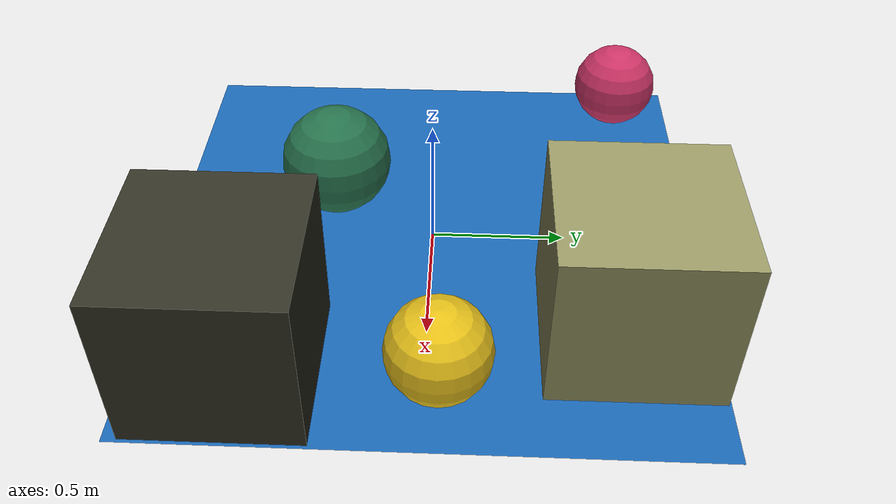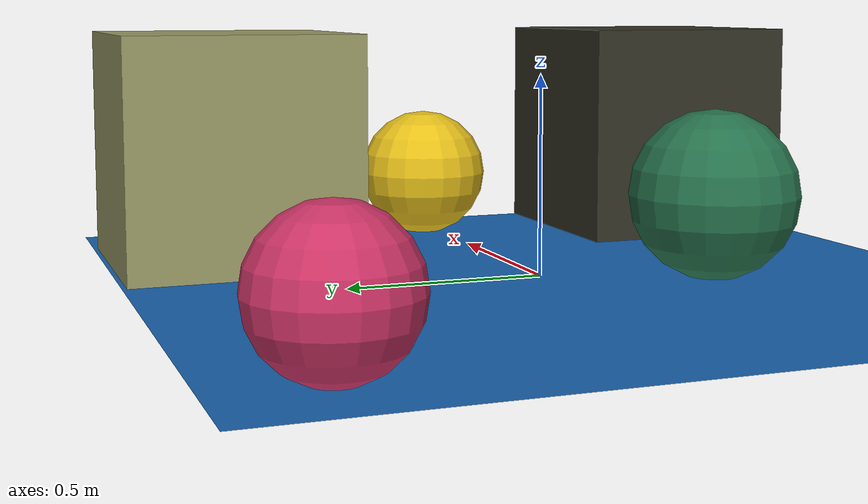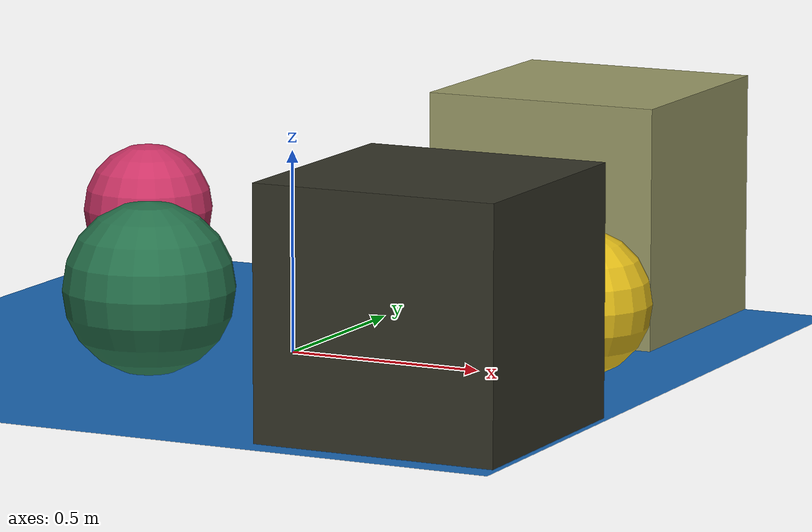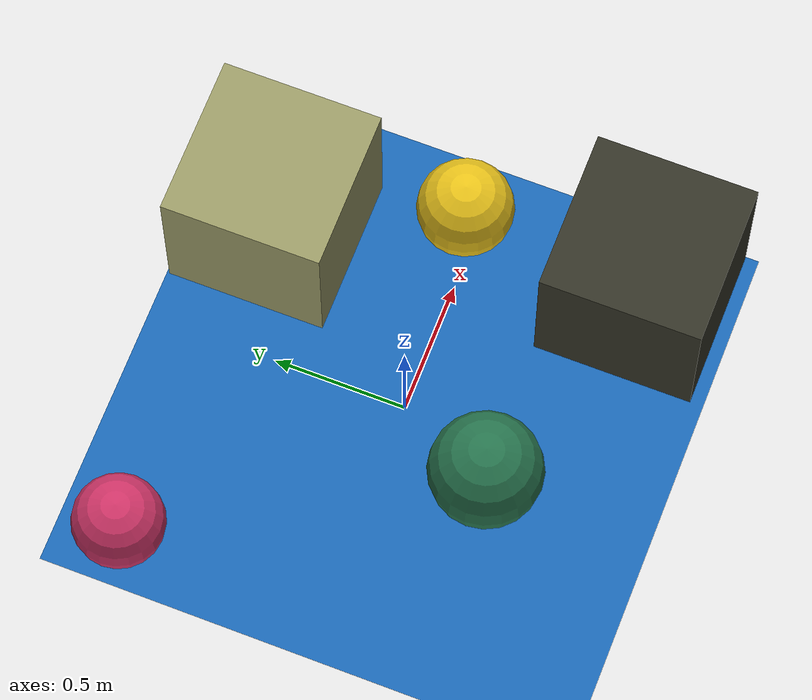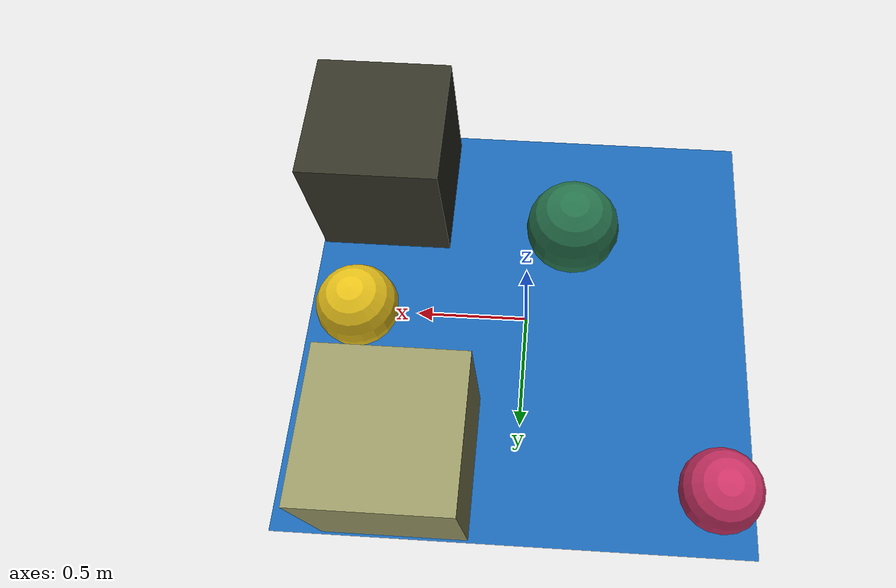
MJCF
<mujoco>
   <asset>
<texture type="skybox" builtin="gradient" rgb1="0.4 0.4 0.5" rgb2="0.7 0.1 0.5" width="256" height="256"/>
<texture name="flat_0" builtin="flat" rgb1="0.8 0.2 0.4" rgb2="0.8 0.2 0.4"  width="200" height="200"/>
<texture name="checker_1" builtin="checker" type="2d" rgb1="0.2 0.6 0.5" rgb2="0.1 0.3 0.1" width="200" height="200"/>
<texture name="checker_2" builtin="checker" type="2d" rgb1="0.4 0.4 0.2" rgb2="0.8 0.8 0.6" width="200" height="200"/>
<texture name="gradient_3" builtin="gradient" rgb1="1.0 1.0 0.0" rgb2="0.8 0.5 0.2" width="200" height="200"/>
<texture name="gradient_4" builtin="gradient" rgb1="0.0 0.4 0.2" rgb2="0.4 0.0 0.1" width="200" height="200"/><material name="flat_0_mat" reflectance="0" texture="flat_0" texuniform="true"/>
<material name="checker_1_mat" reflectance="0" texrepeat="9 9" texture="checker_1" texuniform="false" />
<material name="checker_2_mat" reflectance="0" texrepeat="2 2" texture="checker_2" texuniform="false" />
<material name="gradient_3_mat" reflectance="0" texture="gradient_3" texuniform="true"/>
<material name="gradient_4_mat" reflectance="0" texture="gradient_4" texuniform="true"/>
   </asset>

   <worldbody>
      <light diffuse=".9 .9 .9" pos="0 0 3" dir="0 0 -1"/>
     <geom type="plane" size="1 1 0.1" rgba="0.1 0.4 0.7 1"/>
<geom type="sphere" pos="-0.82 0.76 0.17" size="0.17 0.17 0.17" material="flat_0_mat" />
<geom type="sphere" pos="-0.19 -0.38 0.21" size="0.21 0.21 0.21" material="checker_1_mat" />
<geom type="box" pos="0.48 0.69 0.3" size="0.3 0.3 0.3" material="checker_2_mat" />
<geom type="sphere" pos="0.74 0.05 0.18" size="0.18 0.18 0.18" material="gradient_3_mat" />
<geom type="box" pos="0.69 -0.65 0.3" size="0.3 0.3 0.3" material="gradient_4_mat" /><camera euler="60 0 180" fovy="60" name="camera_a" pos="0 -1.5 1"></camera>   </worldbody>
</mujoco>
